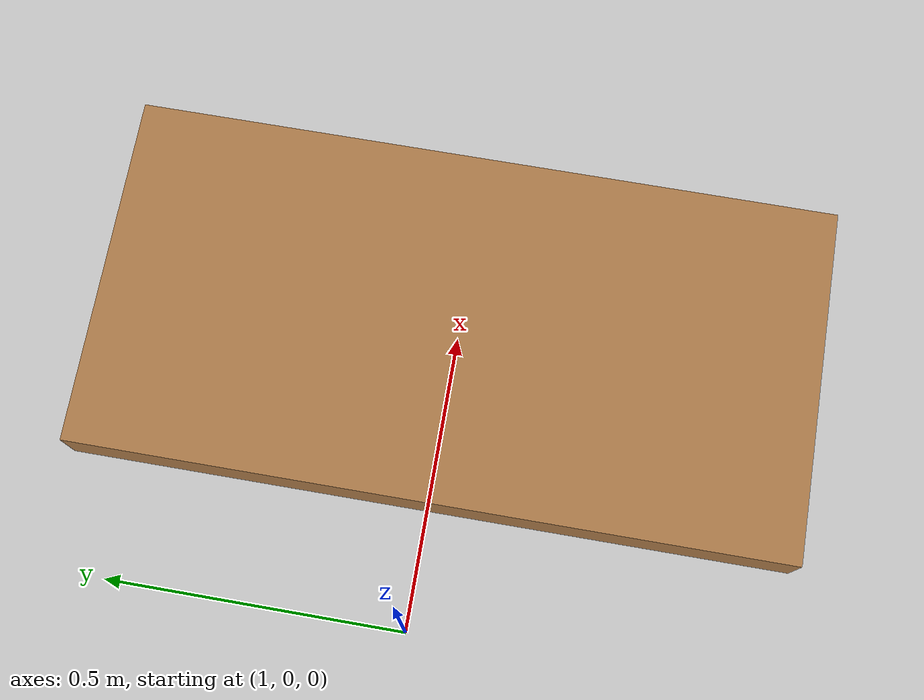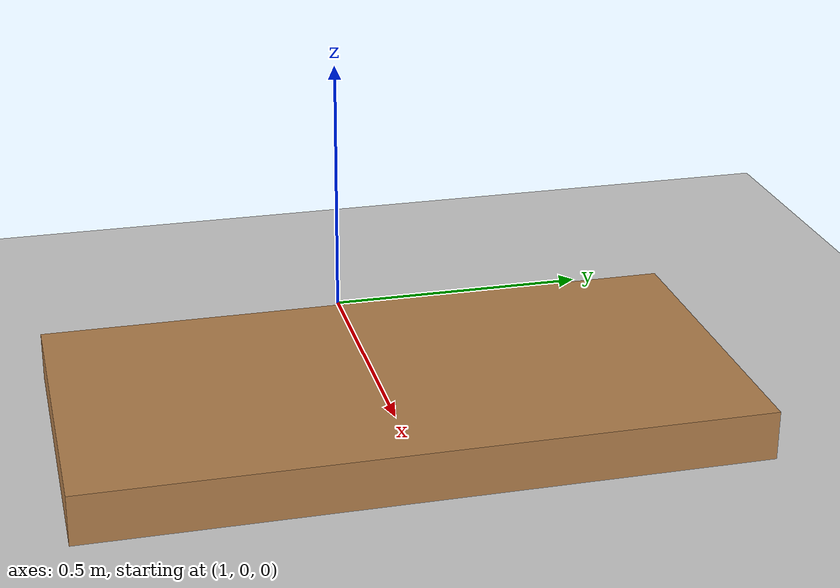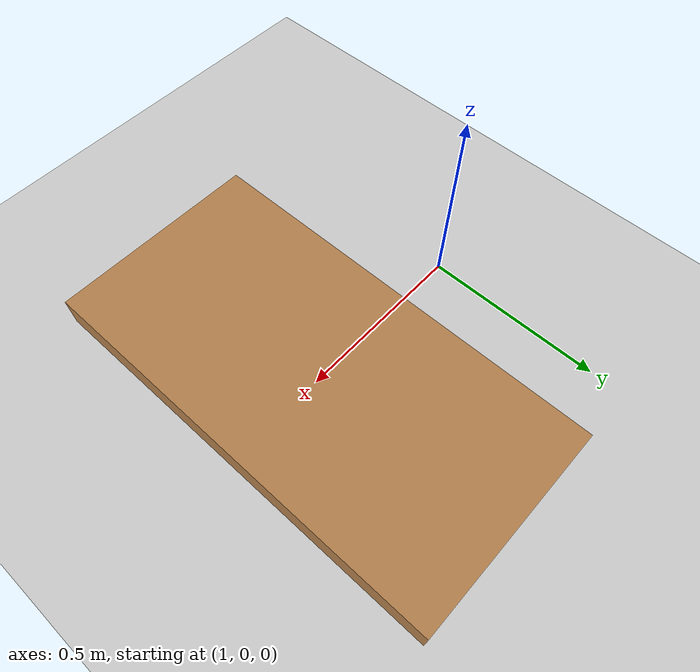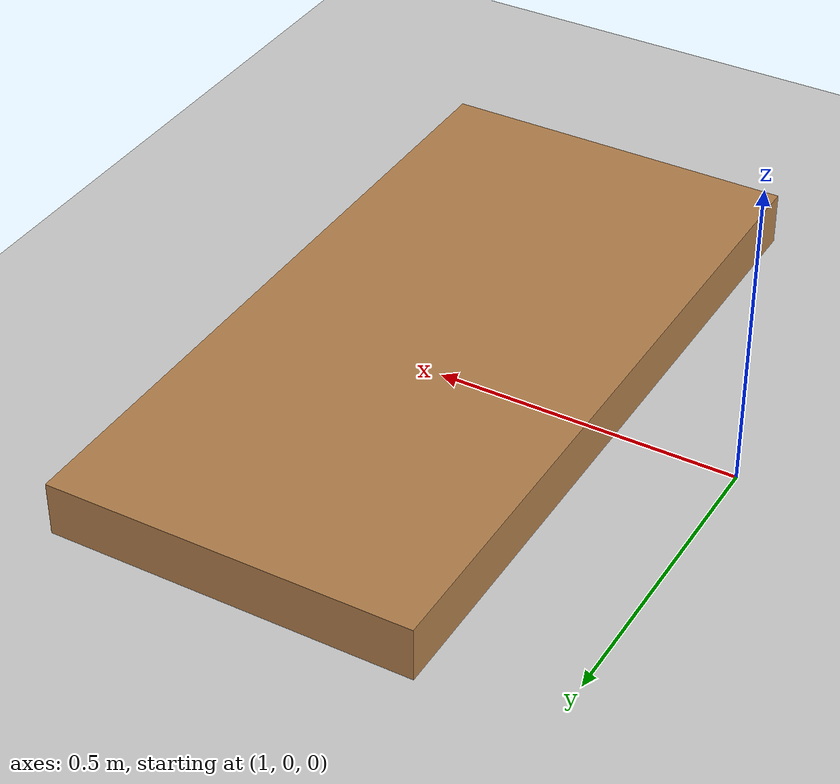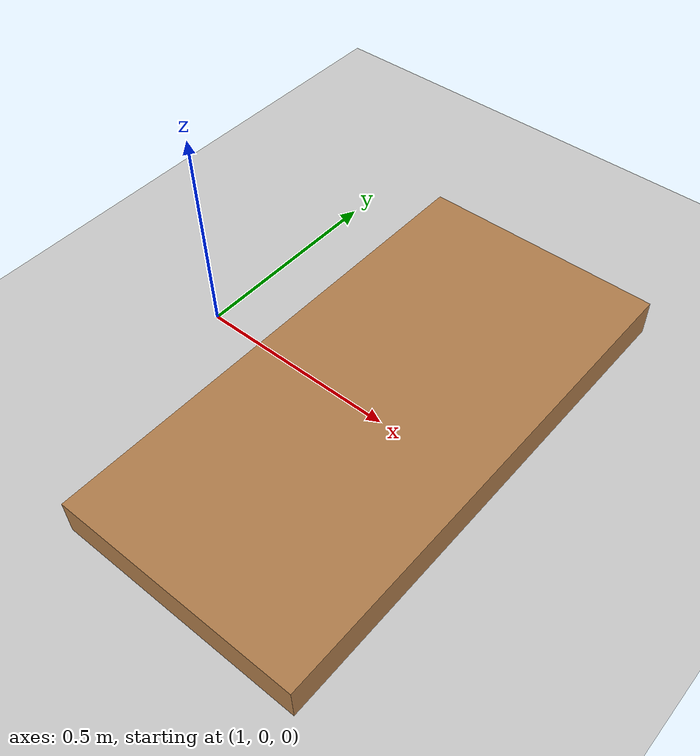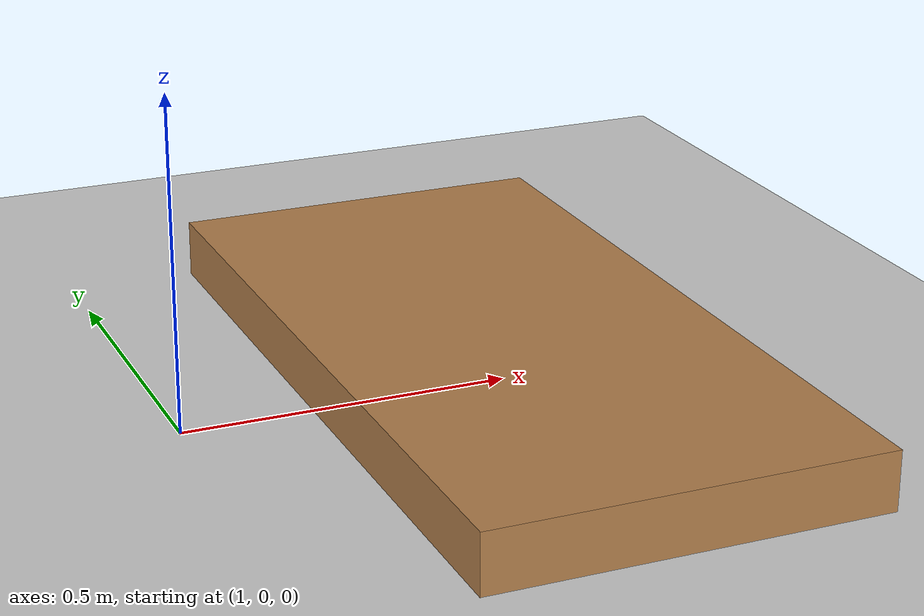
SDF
<?xml version="1.0" ?>

<sdf version="1.5">
    <world name="default">
        <!-- Target real time factor is the product of max_step_size and real_time_update_rate -->
        <!-- Negative real_time_update_rate means that Gazebo will run as fast as possible -->
        <physics type="ode">
            <type>world</type>
            <max_step_size>0.001</max_step_size>
            <real_time_update_rate>1000</real_time_update_rate>
            <iters>500</iters>
        </physics>
        <!-- A global light source -->
        <include>
            <uri>model://sun</uri>
        </include>
        <!-- A ground plane -->
        <include>
            <uri>model://ground_plane</uri>
        </include>

        <model name='box0'>
          <static>true</static>
            <pose frame=''>1.5 0.0 0.045 0 -0 0</pose>
            <link name='box'>
              <visual name='Stairs_1_Visual_0'>
                <pose frame=''>-0 0 0 0 -0 0</pose>
                <geometry>
                  <box>
                    <size>0.6 1.2 0.09</size>
                  </box>
                </geometry>
                <material>
                  <script>
                    <uri>file://media/materials/scripts/gazebo.material</uri>
                    <name>Gazebo/Wood</name>
                  </script>
                  <ambient>1 1 1 1</ambient>
                </material>
              </visual>
              <collision name='Stairs_1_Collision_0'>
                <geometry>
                  <box>
                    <size>0.6 1.2 0.09</size>
                  </box>
                </geometry>
                <surface>
                    <friction>
                      <ode>
                        <mu>10</mu>
                        <mu2>10</mu2>
                      </ode>
                    </friction >
                  </surface>
                <pose frame=''>0 0 0 0 0 0</pose>
              </collision>
            </link>
          </model>

    </world>
</sdf>
